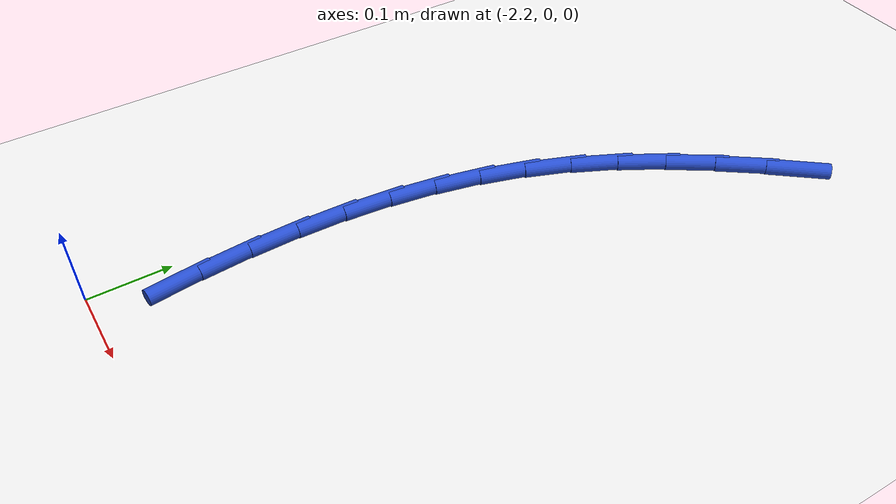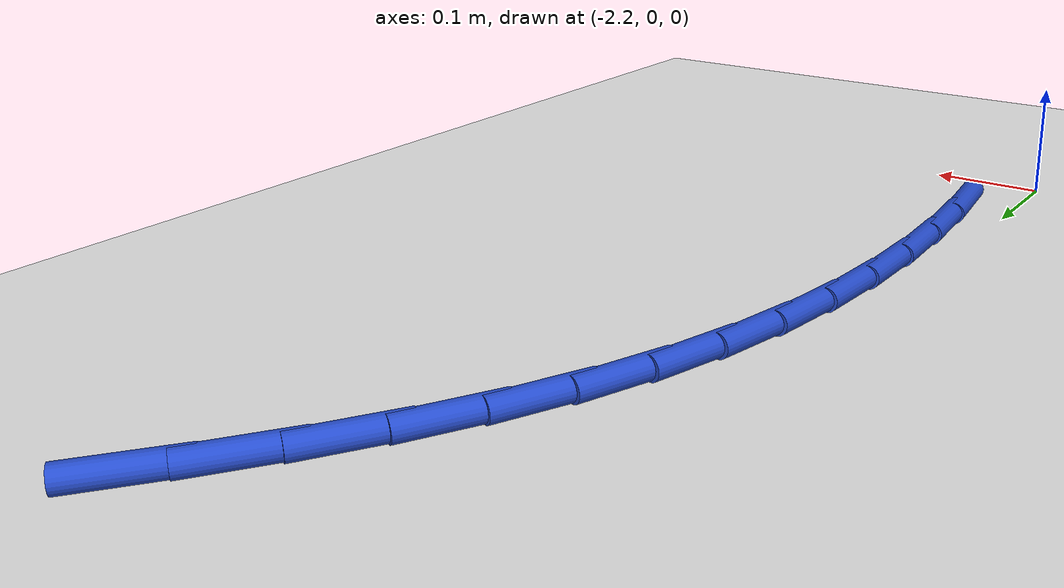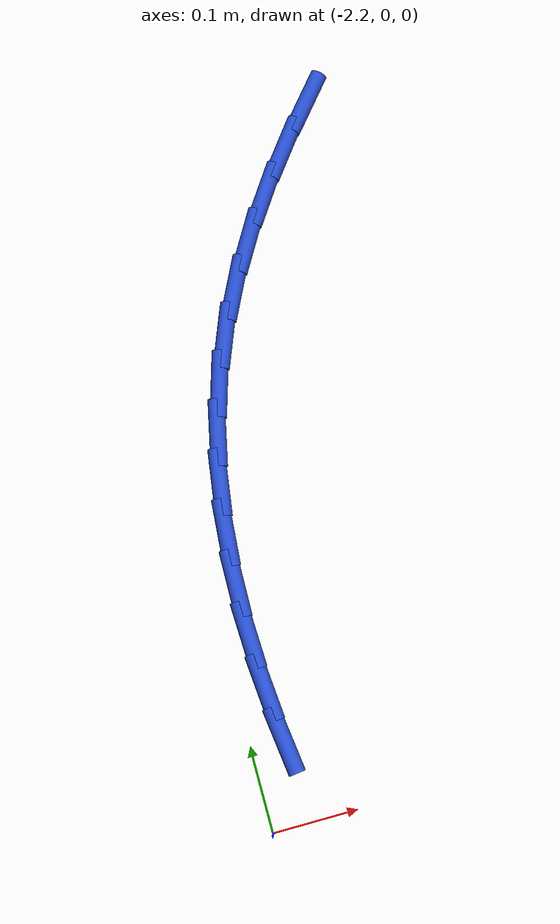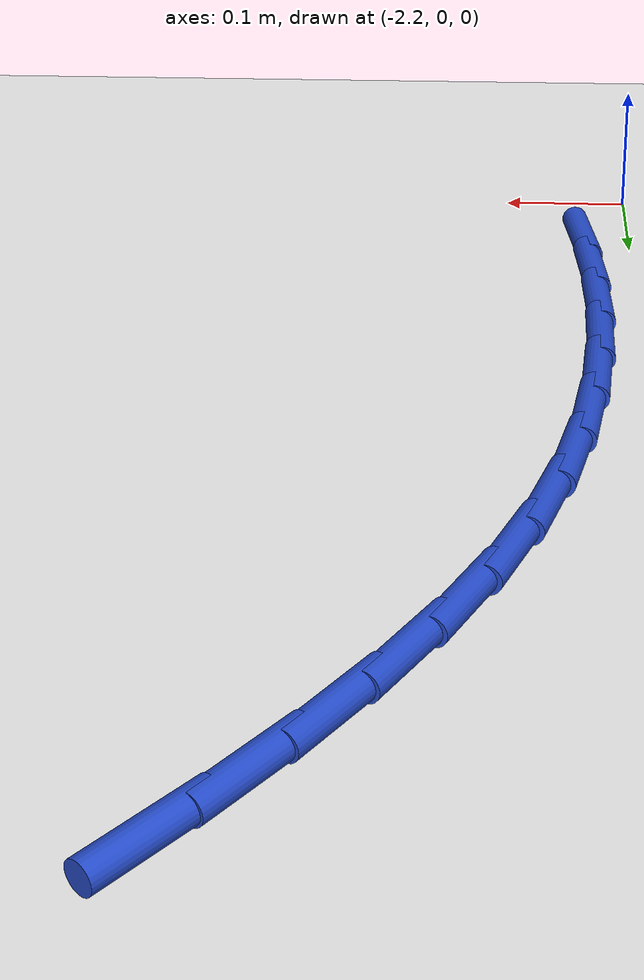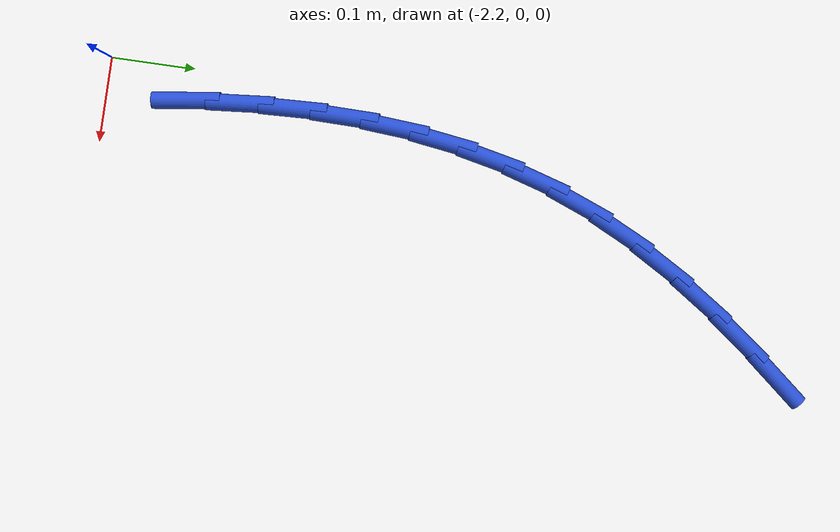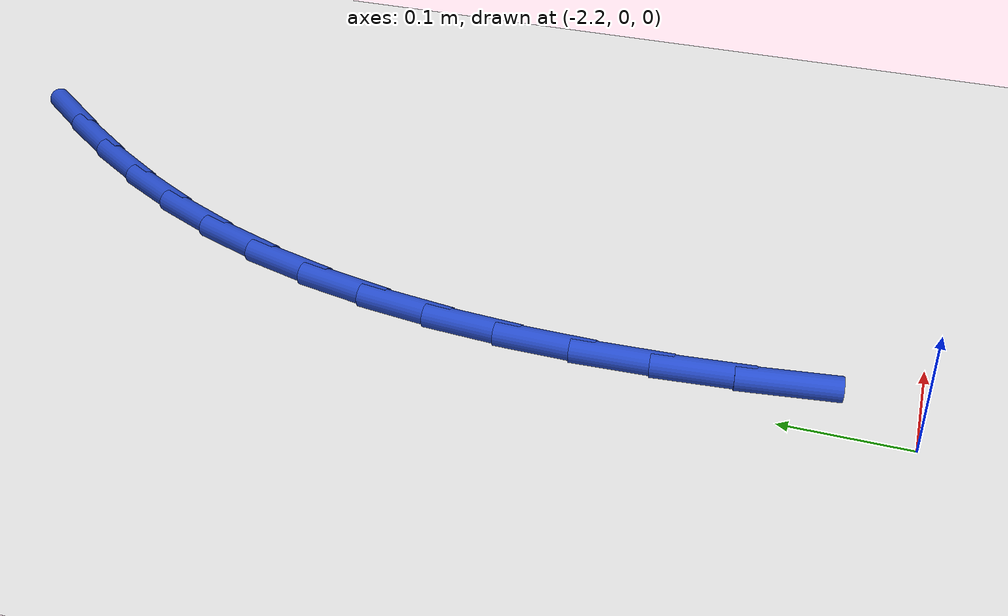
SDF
<sdf version="1.6">
 <world name="default">
  <model name="ground_plane">
   <static>1</static>
   <link name="link">
    <collision name="collision">
     <geometry><plane><normal>0 0 1</normal><size>100 100</size></plane></geometry>
     <surface><friction><ode><mu>100</mu><mu2>50</mu2></ode></friction></surface>
    </collision>
    <visual name="visual">
     <cast_shadows>0</cast_shadows>
     <geometry><plane><normal>0 0 1</normal><size>100 100</size></plane></geometry>
     <material>
      <script><uri>file://media/materials/scripts/gazebo.material</uri><name>Gazebo/WhiteGlow</name></script>
     </material>
    </visual>
   </link>
  </model>
  <model name="line">
   <link name="link_43">
    <pose>-1.9376735639938012 0.8238970728638589 0.01 0 1.57 0.8797316828024792</pose>
    <collision name="collision">
     <geometry><cylinder><radius>0.01</radius><length>0.08</length></cylinder></geometry>
    </collision>
    <visual name="visual">
     <material>
      <script><name>Gazebo/Blue</name><uri>file://media/materials/scripts/gazebo.material</uri></script>
     </material>
     <geometry><cylinder><radius>0.01</radius><length>0.08</length></cylinder></geometry>
    </visual>
   </link>
   <link name="link_44">
    <pose>-1.9781867673110571 0.7749164725811797 0.01 0 1.57 0.9259723905436469</pose>
    <collision name="collision">
     <geometry><cylinder><radius>0.01</radius><length>0.08</length></cylinder></geometry>
    </collision>
    <visual name="visual">
     <material>
      <script><name>Gazebo/Blue</name><uri>file://media/materials/scripts/gazebo.material</uri></script>
     </material>
     <geometry><cylinder><radius>0.01</radius><length>0.08</length></cylinder></geometry>
    </visual>
   </link>
   <link name="link_45">
    <pose>-2.0156529263818537 0.7250990216868133 0.01 0 1.57 0.9807889633003213</pose>
    <collision name="collision">
     <geometry><cylinder><radius>0.01</radius><length>0.08</length></cylinder></geometry>
    </collision>
    <visual name="visual">
     <material>
      <script><name>Gazebo/Blue</name><uri>file://media/materials/scripts/gazebo.material</uri></script>
     </material>
     <geometry><cylinder><radius>0.01</radius><length>0.08</length></cylinder></geometry>
    </visual>
   </link>
   <link name="link_46">
    <pose>-2.04966555144457 0.6743010282112155 0.01 0 1.57 1.044669259453616</pose>
    <collision name="collision">
     <geometry><cylinder><radius>0.01</radius><length>0.08</length></cylinder></geometry>
    </collision>
    <visual name="visual">
     <material>
      <script><name>Gazebo/Blue</name><uri>file://media/materials/scripts/gazebo.material</uri></script>
     </material>
     <geometry><cylinder><radius>0.01</radius><length>0.08</length></cylinder></geometry>
    </visual>
   </link>
   <link name="link_47">
    <pose>-2.0798181527375883 0.622378800184843 0.01 0 1.57 1.11786893651236</pose>
    <collision name="collision">
     <geometry><cylinder><radius>0.01</radius><length>0.08</length></cylinder></geometry>
    </collision>
    <visual name="visual">
     <material>
      <script><name>Gazebo/Blue</name><uri>file://media/materials/scripts/gazebo.material</uri></script>
     </material>
     <geometry><cylinder><radius>0.01</radius><length>0.08</length></cylinder></geometry>
    </visual>
   </link>
   <link name="link_48">
    <pose>-2.1057042404992887 0.5691886456381521 0.01 0 1.57 1.199450812178355</pose>
    <collision name="collision">
     <geometry><cylinder><radius>0.01</radius><length>0.08</length></cylinder></geometry>
    </collision>
    <visual name="visual">
     <material>
      <script><name>Gazebo/Blue</name><uri>file://media/materials/scripts/gazebo.material</uri></script>
     </material>
     <geometry><cylinder><radius>0.01</radius><length>0.08</length></cylinder></geometry>
    </visual>
   </link>
   <link name="link_49">
    <pose>-2.1269613894378447 0.5146008201439801 0.01 0 1.57 1.281486060628133</pose>
    <collision name="collision">
     <geometry><cylinder><radius>0.01</radius><length>0.08</length></cylinder></geometry>
    </collision>
    <visual name="visual">
     <material>
      <script><name>Gazebo/Blue</name><uri>file://media/materials/scripts/gazebo.material</uri></script>
     </material>
     <geometry><cylinder><radius>0.01</radius><length>0.08</length></cylinder></geometry>
    </visual>
   </link>
   <link name="link_50">
    <pose>-2.143627074604579 0.45861215805872596 0.01 0 1.57 1.3590229465324908</pose>
    <collision name="collision">
     <geometry><cylinder><radius>0.01</radius><length>0.08</length></cylinder></geometry>
    </collision>
    <visual name="visual">
     <material>
      <script><name>Gazebo/Blue</name><uri>file://media/materials/scripts/gazebo.material</uri></script>
     </material>
     <geometry><cylinder><radius>0.01</radius><length>0.08</length></cylinder></geometry>
    </visual>
   </link>
   <link name="link_51">
    <pose>-2.155951831316157 0.4012869328137331 0.01 0 1.57 1.4311516758382157</pose>
    <collision name="collision">
     <geometry><cylinder><radius>0.01</radius><length>0.08</length></cylinder></geometry>
    </collision>
    <visual name="visual">
     <material>
      <script><name>Gazebo/Blue</name><uri>file://media/materials/scripts/gazebo.material</uri></script>
     </material>
     <geometry><cylinder><radius>0.01</radius><length>0.08</length></cylinder></geometry>
    </visual>
   </link>
   <link name="link_52">
    <pose>-2.164188180790806 0.3426900464294627 0.01 0 1.57 1.4973468351472228</pose>
    <collision name="collision">
     <geometry><cylinder><radius>0.01</radius><length>0.08</length></cylinder></geometry>
    </collision>
    <visual name="visual">
     <material>
      <script><name>Gazebo/Blue</name><uri>file://media/materials/scripts/gazebo.material</uri></script>
     </material>
     <geometry><cylinder><radius>0.01</radius><length>0.08</length></cylinder></geometry>
    </visual>
   </link>
   <link name="link_53">
    <pose>-2.1685886442467517 0.28288640092637546 0.01 0 1.57 1.5573900922343737</pose>
    <collision name="collision">
     <geometry><cylinder><radius>0.01</radius><length>0.08</length></cylinder></geometry>
    </collision>
    <visual name="visual">
     <material>
      <script><name>Gazebo/Blue</name><uri>file://media/materials/scripts/gazebo.material</uri></script>
     </material>
     <geometry><cylinder><radius>0.01</radius><length>0.08</length></cylinder></geometry>
    </visual>
   </link>
   <link name="link_54">
    <pose>-2.1694057429022195 0.22194089832493258 0.01 0 1.57 -1.5302889045397707</pose>
    <collision name="collision">
     <geometry><cylinder><radius>0.01</radius><length>0.08</length></cylinder></geometry>
    </collision>
    <visual name="visual">
     <material>
      <script><name>Gazebo/Blue</name><uri>file://media/materials/scripts/gazebo.material</uri></script>
     </material>
     <geometry><cylinder><radius>0.01</radius><length>0.08</length></cylinder></geometry>
    </visual>
   </link>
   <link name="link_55">
    <pose>-2.166891997975437 0.15991844064559485 0.01 0 1.57 -1.4823135923533952</pose>
    <collision name="collision">
     <geometry><cylinder><radius>0.01</radius><length>0.08</length></cylinder></geometry>
    </collision>
    <visual name="visual">
     <material>
      <script><name>Gazebo/Blue</name><uri>file://media/materials/scripts/gazebo.material</uri></script>
     </material>
     <geometry><cylinder><radius>0.01</radius><length>0.08</length></cylinder></geometry>
    </visual>
   </link>
   <link name="link_56">
    <pose>-2.1612999306846294 0.09688392990882402 0.01 0 1.57 -1.4399807801453868</pose>
    <collision name="collision">
     <geometry><cylinder><radius>0.01</radius><length>0.08</length></cylinder></geometry>
    </collision>
    <visual name="visual">
     <material>
      <script><name>Gazebo/Blue</name><uri>file://media/materials/scripts/gazebo.material</uri></script>
     </material>
     <geometry><cylinder><radius>0.01</radius><length>0.08</length></cylinder></geometry>
    </visual>
   </link>
  </model>
 </world>
</sdf>
